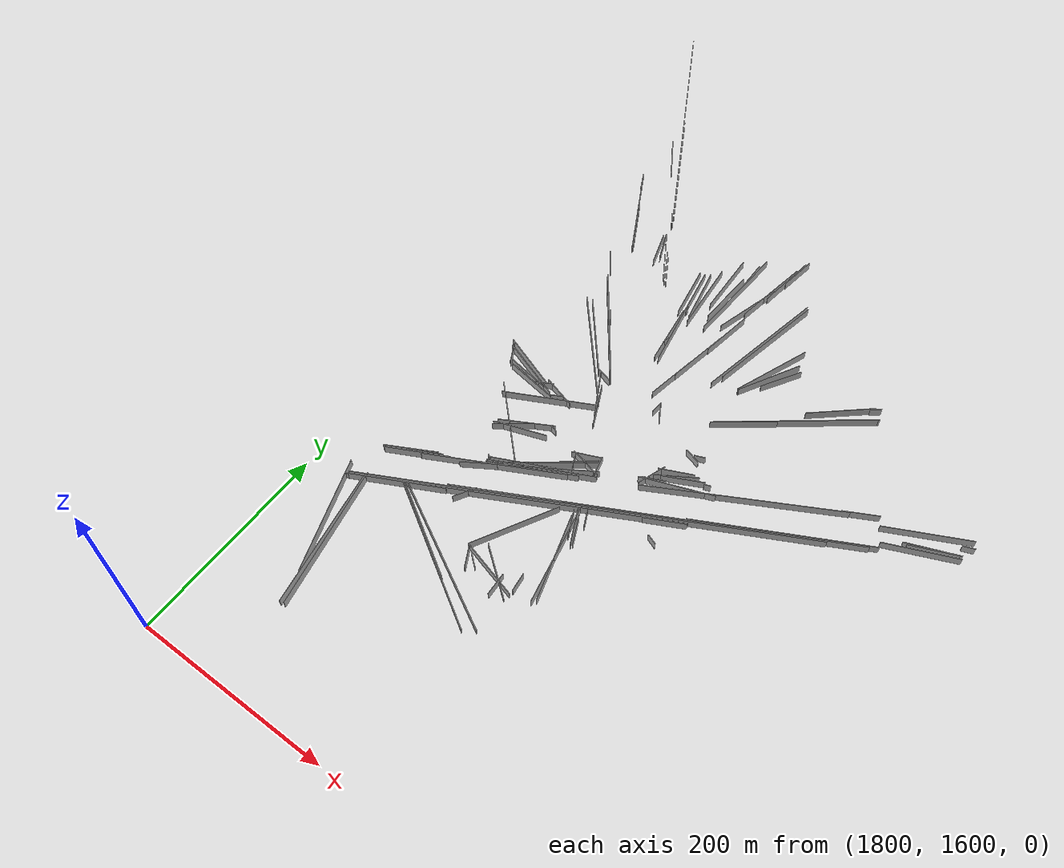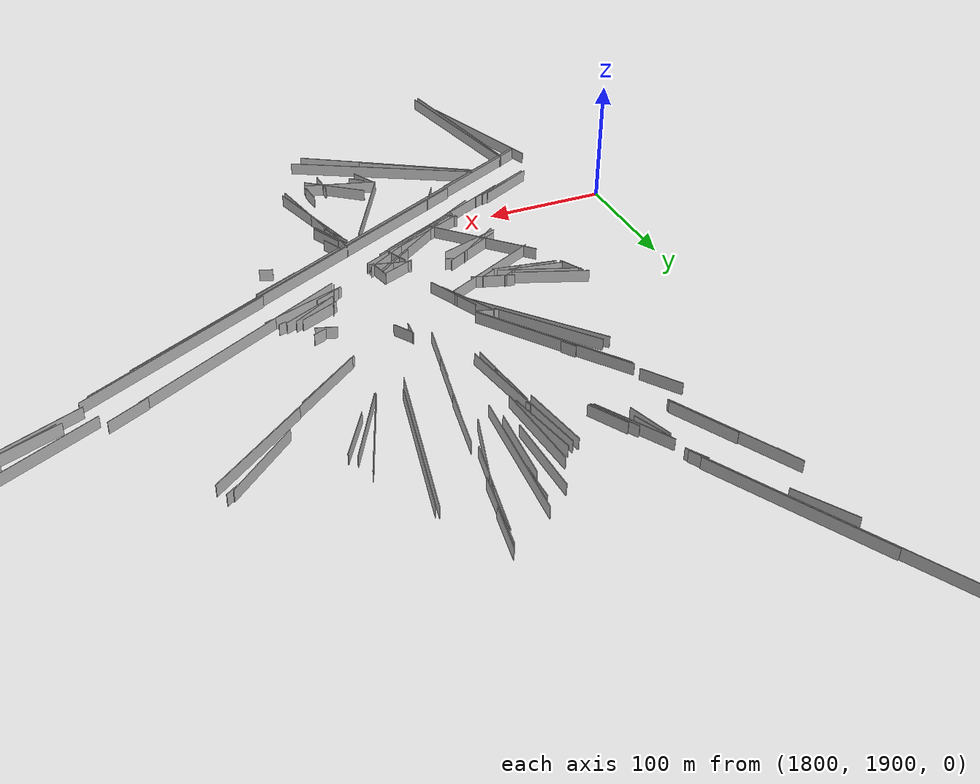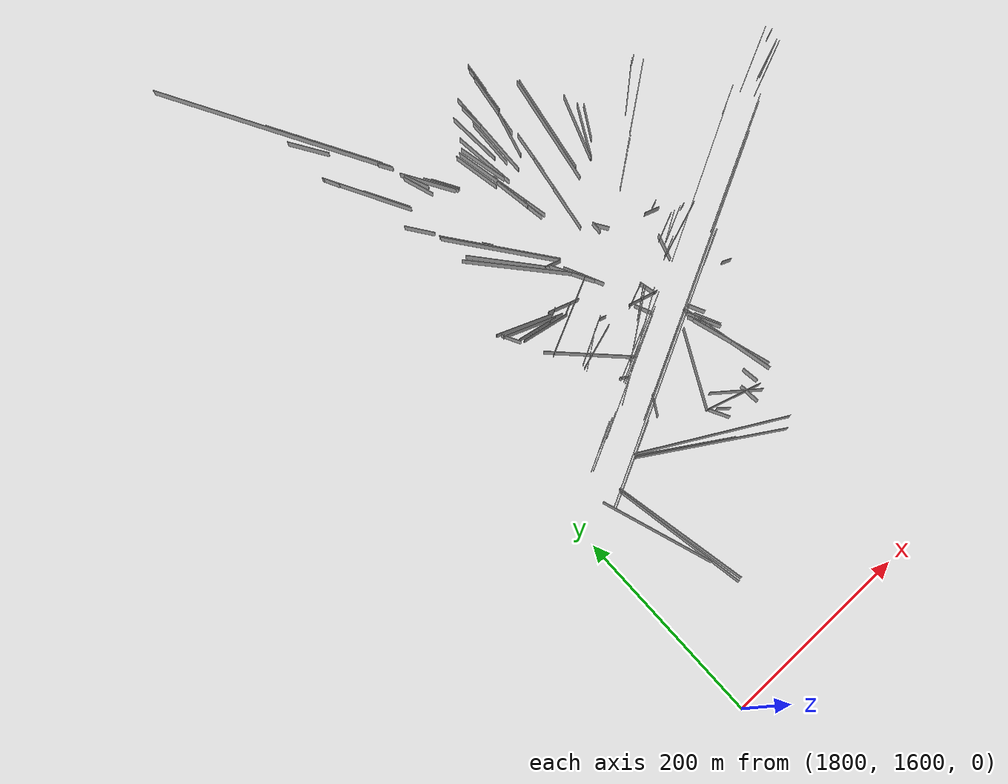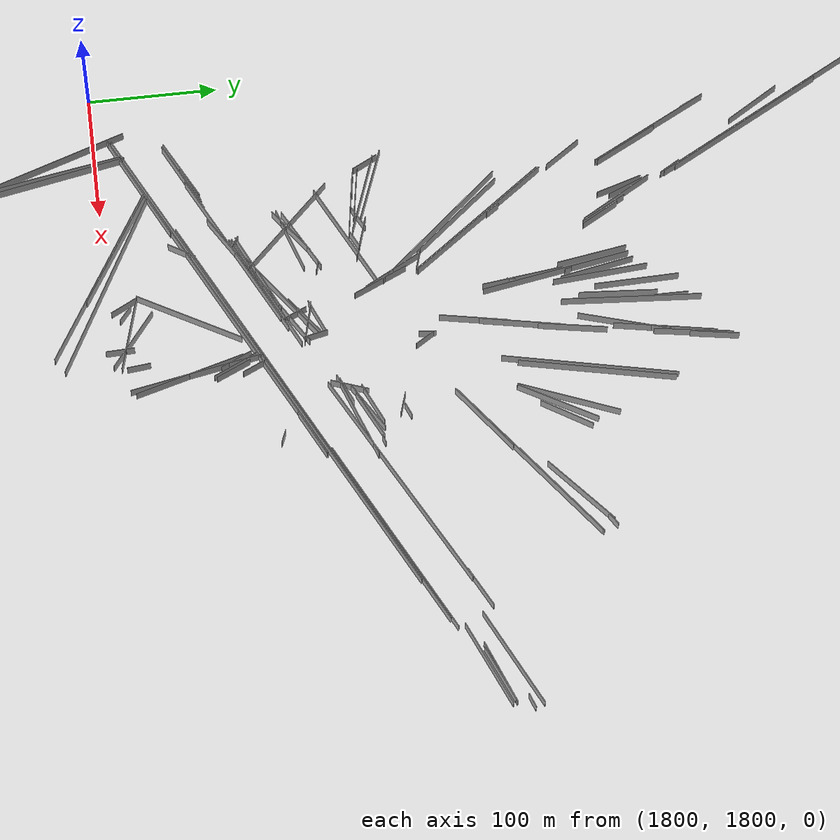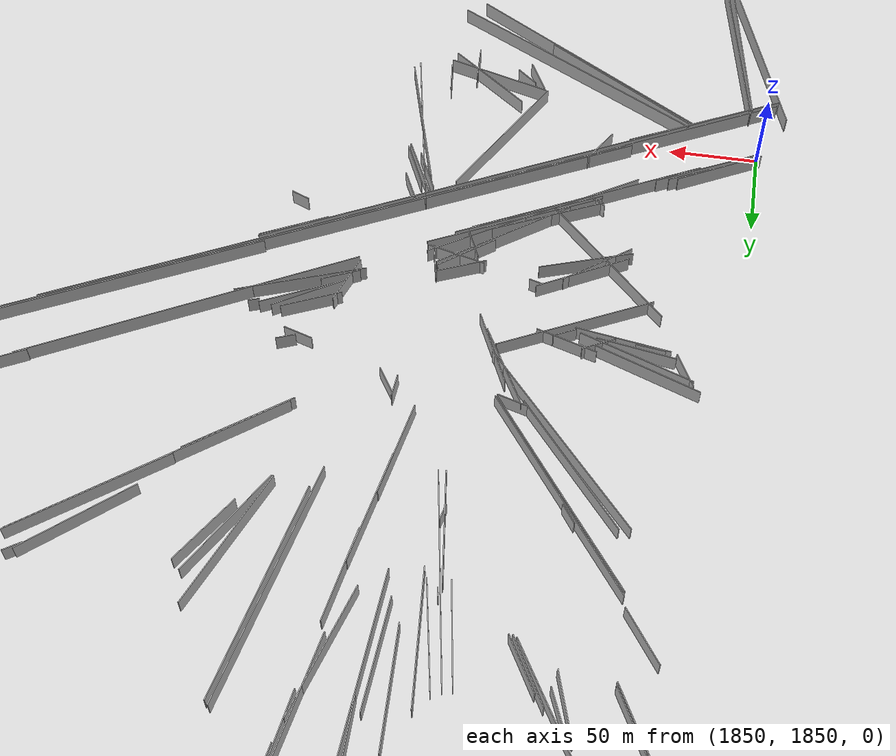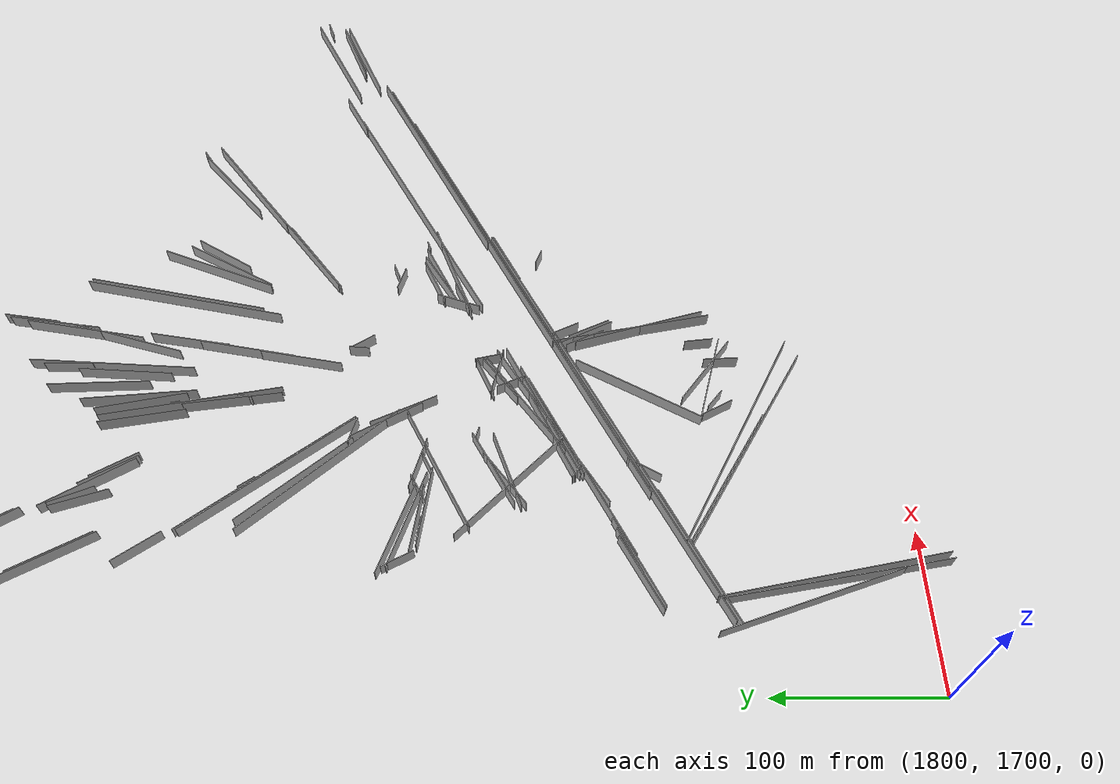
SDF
<sdf version="1.6">
 <model name="Worldsegments">
  <static>1</static>
  <link name="Wall_0">
   <pose>2092.0 1943.5 5.0 0 0 0.4706815</pose>
   <collision name="Wall_0_Collision"><geometry><box><size>381.48264 0.5 10.0</size></box></geometry></collision>
   <visual name="Wall_0_Visual"><geometry><box><size>381.48264 0.5 10.0</size></box></geometry></visual>
  </link>
  <link name="Wall_1">
   <pose>2142.0 2104.0 5.0 0 0 0.6486425</pose>
   <collision name="Wall_1_Collision"><geometry><box><size>155.60205 0.5 10.0</size></box></geometry></collision>
   <visual name="Wall_1_Visual"><geometry><box><size>155.60205 0.5 10.0</size></box></geometry></visual>
  </link>
  <link name="Wall_2">
   <pose>1846.0 2358.5 5.0 0 0 -1.0668479</pose>
   <collision name="Wall_2_Collision"><geometry><box><size>277.49774 0.5 10.0</size></box></geometry></collision>
   <visual name="Wall_2_Visual"><geometry><box><size>277.49774 0.5 10.0</size></box></geometry></visual>
  </link>
  <link name="Wall_8">
   <pose>1878.0 1867.0 5.0 0 0 0.4636476</pose>
   <collision name="Wall_8_Collision"><geometry><box><size>62.609905 0.5 10.0</size></box></geometry></collision>
   <visual name="Wall_8_Visual"><geometry><box><size>62.609905 0.5 10.0</size></box></geometry></visual>
  </link>
  <link name="Wall_9">
   <pose>1937.5 1901.0 5.0 0 0 -0.5880026</pose>
   <collision name="Wall_9_Collision"><geometry><box><size>10.816654 0.5 10.0</size></box></geometry></collision>
   <visual name="Wall_9_Visual"><geometry><box><size>10.816654 0.5 10.0</size></box></geometry></visual>
  </link>
  <link name="Wall_12">
   <pose>2146.5 2005.0 5.0 0 0 0.4893429</pose>
   <collision name="Wall_12_Collision">
    <geometry><box><size>191.47063 0.5 10.0</size></box></geometry>
   </collision>
   <visual name="Wall_12_Visual"><geometry><box><size>191.47063 0.5 10.0</size></box></geometry></visual>
  </link>
  <link name="Wall_13">
   <pose>2021.0 2076.5 5.0 0 0 1.3843094</pose>
   <collision name="Wall_13_Collision">
    <geometry><box><size>53.935146 0.5 10.0</size></box></geometry>
   </collision>
   <visual name="Wall_13_Visual"><geometry><box><size>53.935146 0.5 10.0</size></box></geometry></visual>
  </link>
  <link name="Wall_17">
   <pose>1955.0 1795.5 5.0 0 0 -0.5393047</pose>
   <collision name="Wall_17_Collision">
    <geometry><box><size>153.83432 0.5 10.0</size></box></geometry>
   </collision>
   <visual name="Wall_17_Visual"><geometry><box><size>153.83432 0.5 10.0</size></box></geometry></visual>
  </link>
  <link name="Wall_19">
   <pose>1937.0 2088.5 5.0 0 0 -0.92571294</pose>
   <collision name="Wall_19_Collision">
    <geometry><box><size>126.40016 0.5 10.0</size></box></geometry>
   </collision>
   <visual name="Wall_19_Visual"><geometry><box><size>126.40016 0.5 10.0</size></box></geometry></visual>
  </link>
  <link name="Wall_21">
   <pose>1961.5 1800.5 5.0 0 0 -0.48885235</pose>
   <collision name="Wall_21_Collision">
    <geometry><box><size>159.70598 0.5 10.0</size></box></geometry>
   </collision>
   <visual name="Wall_21_Visual"><geometry><box><size>159.70598 0.5 10.0</size></box></geometry></visual>
  </link>
  <link name="Wall_23">
   <pose>2192.5 1996.0 5.0 0 0 0.47145995</pose>
   <collision name="Wall_23_Collision">
    <geometry><box><size>171.73526 0.5 10.0</size></box></geometry>
   </collision>
   <visual name="Wall_23_Visual"><geometry><box><size>171.73526 0.5 10.0</size></box></geometry></visual>
  </link>
  <link name="Wall_24">
   <pose>2297.0 2072.5 5.0 0 0 0.453066</pose>
   <collision name="Wall_24_Collision"><geometry><box><size>84.5281 0.5 10.0</size></box></geometry></collision>
   <visual name="Wall_24_Visual"><geometry><box><size>84.5281 0.5 10.0</size></box></geometry></visual>
  </link>
  <link name="Wall_25">
   <pose>1867.0 1751.5 5.0 0 0 -1.3973736</pose>
   <collision name="Wall_25_Collision"><geometry><box><size>139.0863 0.5 10.0</size></box></geometry></collision>
   <visual name="Wall_25_Visual"><geometry><box><size>139.0863 0.5 10.0</size></box></geometry></visual>
  </link>
  <link name="Wall_27">
   <pose>2035.0 1913.0 5.0 0 0 0.47186098</pose>
   <collision name="Wall_27_Collision">
    <geometry><box><size>435.60074 0.5 10.0</size></box></geometry>
   </collision>
   <visual name="Wall_27_Visual"><geometry><box><size>435.60074 0.5 10.0</size></box></geometry></visual>
  </link>
  <link name="Wall_32">
   <pose>2043.0 1862.5 5.0 0 0 -1.3790082</pose>
   <collision name="Wall_32_Collision">
    <geometry><box><size>104.92378 0.5 10.0</size></box></geometry>
   </collision>
   <visual name="Wall_32_Visual"><geometry><box><size>104.92378 0.5 10.0</size></box></geometry></visual>
  </link>
  <link name="Wall_33">
   <pose>2028.0 2111.5 5.0 0 0 1.3825748</pose>
   <collision name="Wall_33_Collision">
    <geometry><box><size>64.132675 0.5 10.0</size></box></geometry>
   </collision>
   <visual name="Wall_33_Visual"><geometry><box><size>64.132675 0.5 10.0</size></box></geometry></visual>
  </link>
  <link name="Wall_34">
   <pose>1943.0 1899.0 5.0 0 0 0.47018346</pose>
   <collision name="Wall_34_Collision">
    <geometry><box><size>136.85028 0.5 10.0</size></box></geometry>
   </collision>
   <visual name="Wall_34_Visual"><geometry><box><size>136.85028 0.5 10.0</size></box></geometry></visual>
  </link>
  <link name="Wall_36">
   <pose>2035.5 1893.0 5.0 0 0 -1.141034</pose>
   <collision name="Wall_36_Collision">
    <geometry><box><size>26.400757 0.5 10.0</size></box></geometry>
   </collision>
   <visual name="Wall_36_Visual"><geometry><box><size>26.400757 0.5 10.0</size></box></geometry></visual>
  </link>
  <link name="Wall_37">
   <pose>1939.5 2186.0 5.0 0 0 -1.0612041</pose>
   <collision name="Wall_37_Collision">
    <geometry><box><size>38.948685 0.5 10.0</size></box></geometry>
   </collision>
   <visual name="Wall_37_Visual"><geometry><box><size>38.948685 0.5 10.0</size></box></geometry></visual>
  </link>
  <link name="Wall_38">
   <pose>2035.5 2150.0 5.0 0 0 1.3994172</pose>
   <collision name="Wall_38_Collision">
    <geometry><box><size>52.773098 0.5 10.0</size></box></geometry>
   </collision>
   <visual name="Wall_38_Visual"><geometry><box><size>52.773098 0.5 10.0</size></box></geometry></visual>
  </link>
  <link name="Wall_39">
   <pose>2016.5 2197.5 5.0 0 0 1.5054688</pose>
   <collision name="Wall_39_Collision">
    <geometry><box><size>107.22873 0.5 10.0</size></box></geometry>
   </collision>
   <visual name="Wall_39_Visual"><geometry><box><size>107.22873 0.5 10.0</size></box></geometry></visual>
  </link>
  <link name="Wall_40">
   <pose>1931.0 2197.0 5.0 0 0 -1.0358412</pose>
   <collision name="Wall_40_Collision"><geometry><box><size>62.76942 0.5 10.0</size></box></geometry></collision>
   <visual name="Wall_40_Visual"><geometry><box><size>62.76942 0.5 10.0</size></box></geometry></visual>
  </link>
  <link name="Wall_41">
   <pose>2049.5 2241.0 5.0 0 0 1.4219064</pose>
   <collision name="Wall_41_Collision">
    <geometry><box><size>60.671246 0.5 10.0</size></box></geometry>
   </collision>
   <visual name="Wall_41_Visual"><geometry><box><size>60.671246 0.5 10.0</size></box></geometry></visual>
  </link>
  <link name="Wall_42">
   <pose>1981.5 2008.5 5.0 0 0 -1.136843</pose>
   <collision name="Wall_42_Collision">
    <geometry><box><size>45.188496 0.5 10.0</size></box></geometry>
   </collision>
   <visual name="Wall_42_Visual"><geometry><box><size>45.188496 0.5 10.0</size></box></geometry></visual>
  </link>
  <link name="Wall_47">
   <pose>2018.5 1806.0 5.0 0 0 -1.5253731</pose>
   <collision name="Wall_47_Collision">
    <geometry><box><size>22.022715 0.5 10.0</size></box></geometry>
   </collision>
   <visual name="Wall_47_Visual"><geometry><box><size>22.022715 0.5 10.0</size></box></geometry></visual>
  </link>
  <link name="Wall_53">
   <pose>2091.0 1979.5 5.0 0 0 0.35230872</pose>
   <collision name="Wall_53_Collision"><geometry><box><size>72.44998 0.5 10.0</size></box></geometry></collision>
   <visual name="Wall_53_Visual"><geometry><box><size>72.44998 0.5 10.0</size></box></geometry></visual>
  </link>
  <link name="Wall_54">
   <pose>2002.0 1941.0 5.0 0 0 -1.152572</pose>
   <collision name="Wall_54_Collision">
    <geometry><box><size>19.697716 0.5 10.0</size></box></geometry>
   </collision>
   <visual name="Wall_54_Visual"><geometry><box><size>19.697716 0.5 10.0</size></box></geometry></visual>
  </link>
  <link name="Wall_58">
   <pose>2102.0 1944.0 5.0 0 0 0.4636476</pose>
   <collision name="Wall_58_Collision"><geometry><box><size>40.24922 0.5 10.0</size></box></geometry></collision>
   <visual name="Wall_58_Visual"><geometry><box><size>40.24922 0.5 10.0</size></box></geometry></visual>
  </link>
  <link name="Wall_59">
   <pose>1874.0 2230.0 5.0 0 0 -1.080839</pose>
   <collision name="Wall_59_Collision"><geometry><box><size>102.0 0.5 10.0</size></box></geometry></collision>
   <visual name="Wall_59_Visual"><geometry><box><size>102.0 0.5 10.0</size></box></geometry></visual>
  </link>
  <link name="Wall_61">
   <pose>2300.0 2054.0 5.0 0 0 0.4012288</pose>
   <collision name="Wall_61_Collision">
    <geometry><box><size>71.693794 0.5 10.0</size></box></geometry>
   </collision>
   <visual name="Wall_61_Visual"><geometry><box><size>71.693794 0.5 10.0</size></box></geometry></visual>
  </link>
  <link name="Wall_62">
   <pose>1980.0 1882.5 5.0 0 0 0.47218224</pose>
   <collision name="Wall_62_Collision">
    <geometry><box><size>314.40262 0.5 10.0</size></box></geometry>
   </collision>
   <visual name="Wall_62_Visual"><geometry><box><size>314.40262 0.5 10.0</size></box></geometry></visual>
  </link>
  <link name="Wall_64">
   <pose>1906.0 2003.0 5.0 0 0 -0.34097895</pose>
   <collision name="Wall_64_Collision"><geometry><box><size>65.78754 0.5 10.0</size></box></geometry></collision>
   <visual name="Wall_64_Visual"><geometry><box><size>65.78754 0.5 10.0</size></box></geometry></visual>
  </link>
  <link name="Wall_65">
   <pose>1996.5 1860.5 5.0 0 0 1.0614952</pose>
   <collision name="Wall_65_Collision"><geometry><box><size>88.19297 0.5 10.0</size></box></geometry></collision>
   <visual name="Wall_65_Visual"><geometry><box><size>88.19297 0.5 10.0</size></box></geometry></visual>
  </link>
  <link name="Wall_66">
   <pose>1990.0 2117.0 5.0 0 0 -1.442473</pose>
   <collision name="Wall_66_Collision"><geometry><box><size>62.514 0.5 10.0</size></box></geometry></collision>
   <visual name="Wall_66_Visual"><geometry><box><size>62.514 0.5 10.0</size></box></geometry></visual>
  </link>
  <link name="Wall_67">
   <pose>1871.0 1866.0 5.0 0 0 0.4808873</pose>
   <collision name="Wall_67_Collision">
    <geometry><box><size>51.884487 0.5 10.0</size></box></geometry>
   </collision>
   <visual name="Wall_67_Visual"><geometry><box><size>51.884487 0.5 10.0</size></box></geometry></visual>
  </link>
  <link name="Wall_71">
   <pose>1993.0 2176.5 5.0 0 0 -1.4887888</pose>
   <collision name="Wall_71_Collision"><geometry><box><size>73.24616 0.5 10.0</size></box></geometry></collision>
   <visual name="Wall_71_Visual"><geometry><box><size>73.24616 0.5 10.0</size></box></geometry></visual>
  </link>
  <link name="Wall_72">
   <pose>1869.5 1753.5 5.0 0 0 -1.3789408</pose>
   <collision name="Wall_72_Collision">
    <geometry><box><size>141.59802 0.5 10.0</size></box></geometry>
   </collision>
   <visual name="Wall_72_Visual"><geometry><box><size>141.59802 0.5 10.0</size></box></geometry></visual>
  </link>
  <link name="Wall_73">
   <pose>1940.0 2058.0 5.0 0 0 -0.8534746</pose>
   <collision name="Wall_73_Collision">
    <geometry><box><size>124.73973 0.5 10.0</size></box></geometry>
   </collision>
   <visual name="Wall_73_Visual"><geometry><box><size>124.73973 0.5 10.0</size></box></geometry></visual>
  </link>
  <link name="Wall_74">
   <pose>2033.0 1819.0 5.0 0 0 -1.4601392</pose>
   <collision name="Wall_74_Collision">
    <geometry><box><size>18.110771 0.5 10.0</size></box></geometry>
   </collision>
   <visual name="Wall_74_Visual"><geometry><box><size>18.110771 0.5 10.0</size></box></geometry></visual>
  </link>
  <link name="Wall_76">
   <pose>1933.0 2072.5 5.0 0 0 -0.87459177</pose>
   <collision name="Wall_76_Collision"><geometry><box><size>87.32124 0.5 10.0</size></box></geometry></collision>
   <visual name="Wall_76_Visual"><geometry><box><size>87.32124 0.5 10.0</size></box></geometry></visual>
  </link>
  <link name="Wall_78">
   <pose>2069.0 2159.0 5.0 0 0 1.3617734</pose>
   <collision name="Wall_78_Collision">
    <geometry><box><size>134.93703 0.5 10.0</size></box></geometry>
   </collision>
   <visual name="Wall_78_Visual"><geometry><box><size>134.93703 0.5 10.0</size></box></geometry></visual>
  </link>
  <link name="Wall_81">
   <pose>1981.0 1921.5 5.0 0 0 0.4549142</pose>
   <collision name="Wall_81_Collision">
    <geometry><box><size>102.41582 0.5 10.0</size></box></geometry>
   </collision>
   <visual name="Wall_81_Visual"><geometry><box><size>102.41582 0.5 10.0</size></box></geometry></visual>
  </link>
  <link name="Wall_83">
   <pose>1930.5 2101.0 5.0 0 0 -0.9600704</pose>
   <collision name="Wall_83_Collision">
    <geometry><box><size>12.206555 0.5 10.0</size></box></geometry>
   </collision>
   <visual name="Wall_83_Visual"><geometry><box><size>12.206555 0.5 10.0</size></box></geometry></visual>
  </link>
  <link name="Wall_84">
   <pose>2005.0 1814.0 5.0 0 0 -0.26916748</pose>
   <collision name="Wall_84_Collision">
    <geometry><box><size>60.166435 0.5 10.0</size></box></geometry>
   </collision>
   <visual name="Wall_84_Visual"><geometry><box><size>60.166435 0.5 10.0</size></box></geometry></visual>
  </link>
  <link name="Wall_87">
   <pose>2021.0 1955.0 5.0 0 0 -1.3521274</pose>
   <collision name="Wall_87_Collision">
    <geometry><box><size>18.439089 0.5 10.0</size></box></geometry>
   </collision>
   <visual name="Wall_87_Visual"><geometry><box><size>18.439089 0.5 10.0</size></box></geometry></visual>
  </link>
  <link name="Wall_91">
   <pose>2070.0 1973.5 5.0 0 0 0.42285392</pose>
   <collision name="Wall_91_Collision">
    <geometry><box><size>21.931713 0.5 10.0</size></box></geometry>
   </collision>
   <visual name="Wall_91_Visual"><geometry><box><size>21.931713 0.5 10.0</size></box></geometry></visual>
  </link>
  <link name="Wall_94">
   <pose>2044.0 1857.0 5.0 0 0 -1.2924967</pose>
   <collision name="Wall_94_Collision"><geometry><box><size>87.36132 0.5 10.0</size></box></geometry></collision>
   <visual name="Wall_94_Visual"><geometry><box><size>87.36132 0.5 10.0</size></box></geometry></visual>
  </link>
  <link name="Wall_96">
   <pose>2053.0 2256.5 5.0 0 0 1.4100336</pose>
   <collision name="Wall_96_Collision"><geometry><box><size>37.48333 0.5 10.0</size></box></geometry></collision>
   <visual name="Wall_96_Visual"><geometry><box><size>37.48333 0.5 10.0</size></box></geometry></visual>
  </link>
  <link name="Wall_97">
   <pose>2239.5 2055.0 5.0 0 0 0.47646743</pose>
   <collision name="Wall_97_Collision"><geometry><box><size>34.88553 0.5 10.0</size></box></geometry></collision>
   <visual name="Wall_97_Visual"><geometry><box><size>34.88553 0.5 10.0</size></box></geometry></visual>
  </link>
  <link name="Wall_98">
   <pose>2094.0 2139.5 5.0 0 0 1.19029</pose>
   <collision name="Wall_98_Collision"><geometry><box><size>80.77747 0.5 10.0</size></box></geometry></collision>
   <visual name="Wall_98_Visual"><geometry><box><size>80.77747 0.5 10.0</size></box></geometry></visual>
  </link>
  <link name="Wall_100">
   <pose>2332.5 2082.0 5.0 0 0 0.348771</pose>
   <collision name="Wall_100_Collision">
    <geometry><box><size>11.7046995 0.5 10.0</size></box></geometry>
   </collision>
   <visual name="Wall_100_Visual"><geometry><box><size>11.7046995 0.5 10.0</size></box></geometry></visual>
  </link>
  <link name="Wall_101">
   <pose>1884.5 1872.0 5.0 0 0 0.4497596</pose>
   <collision name="Wall_101_Collision">
    <geometry><box><size>32.202484 0.5 10.0</size></box></geometry>
   </collision>
   <visual name="Wall_101_Visual"><geometry><box><size>32.202484 0.5 10.0</size></box></geometry></visual>
  </link>
  <link name="Wall_102">
   <pose>1965.0 1916.5 5.0 0 0 0.43750978</pose>
   <collision name="Wall_102_Collision">
    <geometry><box><size>68.44706 0.5 10.0</size></box></geometry>
   </collision>
   <visual name="Wall_102_Visual"><geometry><box><size>68.44706 0.5 10.0</size></box></geometry></visual>
  </link>
  <link name="Wall_103">
   <pose>2002.0 2203.5 5.0 0 0 -1.5400368</pose>
   <collision name="Wall_103_Collision">
    <geometry><box><size>65.03076 0.5 10.0</size></box></geometry>
   </collision>
   <visual name="Wall_103_Visual"><geometry><box><size>65.03076 0.5 10.0</size></box></geometry></visual>
  </link>
  <link name="Wall_107">
   <pose>2044.0 2220.0 5.0 0 0 1.3932002</pose>
   <collision name="Wall_107_Collision">
    <geometry><box><size>79.24645 0.5 10.0</size></box></geometry>
   </collision>
   <visual name="Wall_107_Visual"><geometry><box><size>79.24645 0.5 10.0</size></box></geometry></visual>
  </link>
  <link name="Wall_110">
   <pose>2170.5 2139.0 5.0 0 0 0.7118469</pose>
   <collision name="Wall_110_Collision">
    <geometry><box><size>67.357254 0.5 10.0</size></box></geometry>
   </collision>
   <visual name="Wall_110_Visual"><geometry><box><size>67.357254 0.5 10.0</size></box></geometry></visual>
  </link>
  <link name="Wall_112">
   <pose>1888.5 2160.5 5.0 0 0 -0.957589</pose>
   <collision name="Wall_112_Collision">
    <geometry><box><size>33.01515 0.5 10.0</size></box></geometry>
   </collision>
   <visual name="Wall_112_Visual"><geometry><box><size>33.01515 0.5 10.0</size></box></geometry></visual>
  </link>
  <link name="Wall_116">
   <pose>2033.5 2037.0 5.0 0 0 -0.99945885</pose>
   <collision name="Wall_116_Collision">
    <geometry><box><size>16.643316 0.5 10.0</size></box></geometry>
   </collision>
   <visual name="Wall_116_Visual"><geometry><box><size>16.643316 0.5 10.0</size></box></geometry></visual>
  </link>
  <link name="Wall_118">
   <pose>1992.0 2109.5 5.0 0 0 1.3521274</pose>
   <collision name="Wall_118_Collision">
    <geometry><box><size>9.219544 0.5 10.0</size></box></geometry>
   </collision>
   <visual name="Wall_118_Visual"><geometry><box><size>9.219544 0.5 10.0</size></box></geometry></visual>
  </link>
  <link name="Wall_124">
   <pose>1988.5 2174.5 5.0 0 0 -1.3801575</pose>
   <collision name="Wall_124_Collision"><geometry><box><size>58.0517 0.5 10.0</size></box></geometry></collision>
   <visual name="Wall_124_Visual"><geometry><box><size>58.0517 0.5 10.0</size></box></geometry></visual>
  </link>
  <link name="Wall_125">
   <pose>1899.5 2009.5 5.0 0 0 -0.3529904</pose>
   <collision name="Wall_125_Collision">
    <geometry><box><size>60.74537 0.5 10.0</size></box></geometry>
   </collision>
   <visual name="Wall_125_Visual"><geometry><box><size>60.74537 0.5 10.0</size></box></geometry></visual>
  </link>
  <link name="Wall_128">
   <pose>1940.0 1986.0 5.0 0 0 0.4636476</pose>
   <collision name="Wall_128_Collision">
    <geometry><box><size>89.44272 0.5 10.0</size></box></geometry>
   </collision>
   <visual name="Wall_128_Visual"><geometry><box><size>89.44272 0.5 10.0</size></box></geometry></visual>
  </link>
  <link name="Wall_129">
   <pose>2043.0 1905.5 5.0 0 0 -1.1309538</pose>
   <collision name="Wall_129_Collision">
    <geometry><box><size>18.788294 0.5 10.0</size></box></geometry>
   </collision>
   <visual name="Wall_129_Visual"><geometry><box><size>18.788294 0.5 10.0</size></box></geometry></visual>
  </link>
  <link name="Wall_133">
   <pose>2040.0 1891.5 5.0 0 0 -1.1193433</pose>
   <collision name="Wall_133_Collision">
    <geometry><box><size>36.67424 0.5 10.0</size></box></geometry>
   </collision>
   <visual name="Wall_133_Visual"><geometry><box><size>36.67424 0.5 10.0</size></box></geometry></visual>
  </link>
  <link name="Wall_136">
   <pose>1932.5 1945.0 5.0 0 0 0.638914</pose>
   <collision name="Wall_136_Collision">
    <geometry><box><size>43.60046 0.5 10.0</size></box></geometry>
   </collision>
   <visual name="Wall_136_Visual"><geometry><box><size>43.60046 0.5 10.0</size></box></geometry></visual>
  </link>
  <link name="Wall_137">
   <pose>1971.0 1881.0 5.0 0 0 0.47249693</pose>
   <collision name="Wall_137_Collision">
    <geometry><box><size>101.07423 0.5 10.0</size></box></geometry>
   </collision>
   <visual name="Wall_137_Visual"><geometry><box><size>101.07423 0.5 10.0</size></box></geometry></visual>
  </link>
  <link name="Wall_138">
   <pose>1988.0 2143.0 5.0 0 0 -1.3971251</pose>
   <collision name="Wall_138_Collision">
    <geometry><box><size>115.74109 0.5 10.0</size></box></geometry>
   </collision>
   <visual name="Wall_138_Visual"><geometry><box><size>115.74109 0.5 10.0</size></box></geometry></visual>
  </link>
  <link name="Wall_141">
   <pose>2113.0 1997.0 5.0 0 0 0.32175055</pose>
   <collision name="Wall_141_Collision">
    <geometry><box><size>6.3245554 0.5 10.0</size></box></geometry>
   </collision>
   <visual name="Wall_141_Visual"><geometry><box><size>6.3245554 0.5 10.0</size></box></geometry></visual>
  </link>
  <link name="Wall_142">
   <pose>1977.5 2172.0 5.0 0 0 -1.4056476</pose>
   <collision name="Wall_142_Collision">
    <geometry><box><size>54.74486 0.5 10.0</size></box></geometry>
   </collision>
   <visual name="Wall_142_Visual"><geometry><box><size>54.74486 0.5 10.0</size></box></geometry></visual>
  </link>
  <link name="Wall_147">
   <pose>2072.5 2164.0 5.0 0 0 1.3620192</pose>
   <collision name="Wall_147_Collision">
    <geometry><box><size>120.61923 0.5 10.0</size></box></geometry>
   </collision>
   <visual name="Wall_147_Visual"><geometry><box><size>120.61923 0.5 10.0</size></box></geometry></visual>
  </link>
  <link name="Wall_148">
   <pose>2085.0 1988.0 5.0 0 0 0.5485494</pose>
   <collision name="Wall_148_Collision">
    <geometry><box><size>42.190044 0.5 10.0</size></box></geometry>
   </collision>
   <visual name="Wall_148_Visual"><geometry><box><size>42.190044 0.5 10.0</size></box></geometry></visual>
  </link>
  <link name="Wall_150">
   <pose>1854.0 1768.5 5.0 0 0 -1.2409596</pose>
   <collision name="Wall_150_Collision">
    <geometry><box><size>117.32433 0.5 10.0</size></box></geometry>
   </collision>
   <visual name="Wall_150_Visual"><geometry><box><size>117.32433 0.5 10.0</size></box></geometry></visual>
  </link>
  <link name="Wall_151">
   <pose>2036.5 2190.5 5.0 0 0 1.2832205</pose>
   <collision name="Wall_151_Collision">
    <geometry><box><size>74.04053 0.5 10.0</size></box></geometry>
   </collision>
   <visual name="Wall_151_Visual"><geometry><box><size>74.04053 0.5 10.0</size></box></geometry></visual>
  </link>
  <link name="Wall_156">
   <pose>2011.0 2188.0 5.0 0 0 1.5042281</pose>
   <collision name="Wall_156_Collision">
    <geometry><box><size>60.133186 0.5 10.0</size></box></geometry>
   </collision>
   <visual name="Wall_156_Visual"><geometry><box><size>60.133186 0.5 10.0</size></box></geometry></visual>
  </link>
  <link name="Wall_157">
   <pose>2004.5 1948.0 5.0 0 0 0.6489956</pose>
   <collision name="Wall_157_Collision">
    <geometry><box><size>36.40055 0.5 10.0</size></box></geometry>
   </collision>
   <visual name="Wall_157_Visual"><geometry><box><size>36.40055 0.5 10.0</size></box></geometry></visual>
  </link>
  <link name="Wall_158">
   <pose>1943.0 2183.0 5.0 0 0 -1.0516502</pose>
   <collision name="Wall_158_Collision">
    <geometry><box><size>32.24903 0.5 10.0</size></box></geometry>
   </collision>
   <visual name="Wall_158_Visual"><geometry><box><size>32.24903 0.5 10.0</size></box></geometry></visual>
  </link>
  <link name="Wall_161">
   <pose>1914.0 1993.0 5.0 0 0 -0.15264933</pose>
   <collision name="Wall_161_Collision">
    <geometry><box><size>52.611786 0.5 10.0</size></box></geometry>
   </collision>
   <visual name="Wall_161_Visual"><geometry><box><size>52.611786 0.5 10.0</size></box></geometry></visual>
  </link>
  <link name="Wall_163">
   <pose>2103.5 2074.0 5.0 0 0 0.6403565</pose>
   <collision name="Wall_163_Collision">
    <geometry><box><size>63.600315 0.5 10.0</size></box></geometry>
   </collision>
   <visual name="Wall_163_Visual"><geometry><box><size>63.600315 0.5 10.0</size></box></geometry></visual>
  </link>
  <link name="Wall_164">
   <pose>2307.5 2061.5 5.0 0 0 0.36990607</pose>
   <collision name="Wall_164_Collision">
    <geometry><box><size>52.554733 0.5 10.0</size></box></geometry>
   </collision>
   <visual name="Wall_164_Visual"><geometry><box><size>52.554733 0.5 10.0</size></box></geometry></visual>
  </link>
  <link name="Wall_165">
   <pose>1974.0 1916.0 5.0 0 0 0.45333868</pose>
   <collision name="Wall_165_Collision">
    <geometry><box><size>86.764046 0.5 10.0</size></box></geometry>
   </collision>
   <visual name="Wall_165_Visual"><geometry><box><size>86.764046 0.5 10.0</size></box></geometry></visual>
  </link>
  <link name="Wall_166">
   <pose>1855.0 2265.0 5.0 0 0 -1.1071488</pose>
   <collision name="Wall_166_Collision">
    <geometry><box><size>17.888544 0.5 10.0</size></box></geometry>
   </collision>
   <visual name="Wall_166_Visual"><geometry><box><size>17.888544 0.5 10.0</size></box></geometry></visual>
  </link>
  <link name="Wall_167">
   <pose>2106.5 2136.5 5.0 0 0 1.0146301</pose>
   <collision name="Wall_167_Collision">
    <geometry><box><size>43.56604 0.5 10.0</size></box></geometry>
   </collision>
   <visual name="Wall_167_Visual"><geometry><box><size>43.56604 0.5 10.0</size></box></geometry></visual>
  </link>
  <link name="Wall_170">
   <pose>1940.0 1860.0 5.0 0 0 1.0303768</pose>
   <collision name="Wall_170_Collision">
    <geometry><box><size>23.323807 0.5 10.0</size></box></geometry>
   </collision>
   <visual name="Wall_170_Visual"><geometry><box><size>23.323807 0.5 10.0</size></box></geometry></visual>
  </link>
  <link name="Wall_173">
   <pose>2091.5 1989.0 5.0 0 0 0.45277846</pose>
   <collision name="Wall_173_Collision">
    <geometry><box><size>41.14608 0.5 10.0</size></box></geometry>
   </collision>
   <visual name="Wall_173_Visual"><geometry><box><size>41.14608 0.5 10.0</size></box></geometry></visual>
  </link>
  <link name="Wall_174">
   <pose>1945.0 1993.0 5.0 0 0 0.4636476</pose>
   <collision name="Wall_174_Collision">
    <geometry><box><size>13.416408 0.5 10.0</size></box></geometry>
   </collision>
   <visual name="Wall_174_Visual"><geometry><box><size>13.416408 0.5 10.0</size></box></geometry></visual>
  </link>
  <link name="Wall_175">
   <pose>1986.0 1932.5 5.0 0 0 0.62441033</pose>
   <collision name="Wall_175_Collision">
    <geometry><box><size>83.81527 0.5 10.0</size></box></geometry>
   </collision>
   <visual name="Wall_175_Visual"><geometry><box><size>83.81527 0.5 10.0</size></box></geometry></visual>
  </link>
  <link name="Wall_176">
   <pose>2168.5 2124.5 5.0 0 0 0.6456893</pose>
   <collision name="Wall_176_Collision">
    <geometry><box><size>91.400215 0.5 10.0</size></box></geometry>
   </collision>
   <visual name="Wall_176_Visual"><geometry><box><size>91.400215 0.5 10.0</size></box></geometry></visual>
  </link>
  <link name="Wall_177">
   <pose>1974.0 2019.0 5.0 0 0 -1.0714496</pose>
   <collision name="Wall_177_Collision">
    <geometry><box><size>50.119858 0.5 10.0</size></box></geometry>
   </collision>
   <visual name="Wall_177_Visual"><geometry><box><size>50.119858 0.5 10.0</size></box></geometry></visual>
  </link>
  <link name="Wall_179">
   <pose>1922.5 2205.5 5.0 0 0 -1.1839206</pose>
   <collision name="Wall_179_Collision">
    <geometry><box><size>29.15476 0.5 10.0</size></box></geometry>
   </collision>
   <visual name="Wall_179_Visual"><geometry><box><size>29.15476 0.5 10.0</size></box></geometry></visual>
  </link>
  <link name="Wall_184">
   <pose>1940.0 1952.0 5.0 0 0 0.49642277</pose>
   <collision name="Wall_184_Collision">
    <geometry><box><size>54.589375 0.5 10.0</size></box></geometry>
   </collision>
   <visual name="Wall_184_Visual"><geometry><box><size>54.589375 0.5 10.0</size></box></geometry></visual>
  </link>
  <link name="Wall_186">
   <pose>1926.5 1997.5 5.0 0 0 0.48689923</pose>
   <collision name="Wall_186_Collision">
    <geometry><box><size>19.235384 0.5 10.0</size></box></geometry>
   </collision>
   <visual name="Wall_186_Visual"><geometry><box><size>19.235384 0.5 10.0</size></box></geometry></visual>
  </link>
  <link name="Wall_189">
   <pose>2082.5 1992.0 5.0 0 0 0.4241944</pose>
   <collision name="Wall_189_Collision"><geometry><box><size>34.0147 0.5 10.0</size></box></geometry></collision>
   <visual name="Wall_189_Visual"><geometry><box><size>34.0147 0.5 10.0</size></box></geometry></visual>
  </link>
  <link name="Wall_190">
   <pose>2096.5 2131.0 5.0 0 0 1.053509</pose>
   <collision name="Wall_190_Collision">
    <geometry><box><size>66.730804 0.5 10.0</size></box></geometry>
   </collision>
   <visual name="Wall_190_Visual"><geometry><box><size>66.730804 0.5 10.0</size></box></geometry></visual>
  </link>
  <link name="Wall_191">
   <pose>1988.5 1812.5 5.0 0 0 -0.6857295</pose>
   <collision name="Wall_191_Collision">
    <geometry><box><size>14.21267 0.5 10.0</size></box></geometry>
   </collision>
   <visual name="Wall_191_Visual"><geometry><box><size>14.21267 0.5 10.0</size></box></geometry></visual>
  </link>
  <link name="Wall_194">
   <pose>2043.0 1890.0 5.0 0 0 -1.1383885</pose>
   <collision name="Wall_194_Collision">
    <geometry><box><size>28.635643 0.5 10.0</size></box></geometry>
   </collision>
   <visual name="Wall_194_Visual"><geometry><box><size>28.635643 0.5 10.0</size></box></geometry></visual>
  </link>
  <link name="Wall_195">
   <pose>1982.0 1811.5 5.0 0 0 -1.0863184</pose>
   <collision name="Wall_195_Collision">
    <geometry><box><size>21.470911 0.5 10.0</size></box></geometry>
   </collision>
   <visual name="Wall_195_Visual"><geometry><box><size>21.470911 0.5 10.0</size></box></geometry></visual>
  </link>
  <link name="Wall_196">
   <pose>2308.5 2061.0 5.0 0 0 0.39644128</pose>
   <collision name="Wall_196_Collision">
    <geometry><box><size>46.615448 0.5 10.0</size></box></geometry>
   </collision>
   <visual name="Wall_196_Visual"><geometry><box><size>46.615448 0.5 10.0</size></box></geometry></visual>
  </link>
  <link name="Wall_198">
   <pose>1920.5 2200.5 5.0 0 0 -1.2662854</pose>
   <collision name="Wall_198_Collision">
    <geometry><box><size>36.687874 0.5 10.0</size></box></geometry>
   </collision>
   <visual name="Wall_198_Visual"><geometry><box><size>36.687874 0.5 10.0</size></box></geometry></visual>
  </link>
  <link name="Wall_204">
   <pose>2085.0 2014.5 5.0 0 0 -0.30288488</pose>
   <collision name="Wall_204_Collision">
    <geometry><box><size>16.763054 0.5 10.0</size></box></geometry>
   </collision>
   <visual name="Wall_204_Visual"><geometry><box><size>16.763054 0.5 10.0</size></box></geometry></visual>
  </link>
  <link name="Wall_206">
   <pose>1861.5 2313.0 5.0 0 0 -1.012197</pose>
   <collision name="Wall_206_Collision">
    <geometry><box><size>47.169907 0.5 10.0</size></box></geometry>
   </collision>
   <visual name="Wall_206_Visual"><geometry><box><size>47.169907 0.5 10.0</size></box></geometry></visual>
  </link>
  <link name="Wall_209">
   <pose>1971.0 1916.0 5.0 0 0 0.5536813</pose>
   <collision name="Wall_209_Collision">
    <geometry><box><size>129.3213 0.5 10.0</size></box></geometry>
   </collision>
   <visual name="Wall_209_Visual"><geometry><box><size>129.3213 0.5 10.0</size></box></geometry></visual>
  </link>
  <link name="Wall_210">
   <pose>1964.5 1962.0 5.0 0 0 -0.27829966</pose>
   <collision name="Wall_210_Collision"><geometry><box><size>7.28011 0.5 10.0</size></box></geometry></collision>
   <visual name="Wall_210_Visual"><geometry><box><size>7.28011 0.5 10.0</size></box></geometry></visual>
  </link>
  <link name="Wall_211">
   <pose>2196.5 2160.0 5.0 0 0 0.5880026</pose>
   <collision name="Wall_211_Collision">
    <geometry><box><size>10.816654 0.5 10.0</size></box></geometry>
   </collision>
   <visual name="Wall_211_Visual"><geometry><box><size>10.816654 0.5 10.0</size></box></geometry></visual>
  </link>
  <link name="Wall_213">
   <pose>1928.0 1942.0 5.0 0 0 -0.7853982</pose>
   <collision name="Wall_213_Collision"><geometry><box><size>93.3381 0.5 10.0</size></box></geometry></collision>
   <visual name="Wall_213_Visual"><geometry><box><size>93.3381 0.5 10.0</size></box></geometry></visual>
  </link>
  <link name="Wall_215">
   <pose>2010.0 1950.0 5.0 0 0 -0.24497867</pose>
   <collision name="Wall_215_Collision">
    <geometry><box><size>32.984844 0.5 10.0</size></box></geometry>
   </collision>
   <visual name="Wall_215_Visual"><geometry><box><size>32.984844 0.5 10.0</size></box></geometry></visual>
  </link>
  <link name="Wall_216">
   <pose>1876.5 2305.0 5.0 0 0 -1.0673027</pose>
   <collision name="Wall_216_Collision">
    <geometry><box><size>134.71823 0.5 10.0</size></box></geometry>
   </collision>
   <visual name="Wall_216_Visual"><geometry><box><size>134.71823 0.5 10.0</size></box></geometry></visual>
  </link>
  <link name="Wall_218">
   <pose>1966.5 2039.5 5.0 0 0 -0.28605145</pose>
   <collision name="Wall_218_Collision">
    <geometry><box><size>17.720045 0.5 10.0</size></box></geometry>
   </collision>
   <visual name="Wall_218_Visual"><geometry><box><size>17.720045 0.5 10.0</size></box></geometry></visual>
  </link>
  <link name="Wall_219">
   <pose>1933.0 1810.0 5.0 0 0 -0.5438325</pose>
   <collision name="Wall_219_Collision">
    <geometry><box><size>100.49876 0.5 10.0</size></box></geometry>
   </collision>
   <visual name="Wall_219_Visual"><geometry><box><size>100.49876 0.5 10.0</size></box></geometry></visual>
  </link>
  <link name="Wall_222">
   <pose>1943.5 1998.0 5.0 0 0 -0.29423457</pose>
   <collision name="Wall_222_Collision">
    <geometry><box><size>34.48188 0.5 10.0</size></box></geometry>
   </collision>
   <visual name="Wall_222_Visual"><geometry><box><size>34.48188 0.5 10.0</size></box></geometry></visual>
  </link>
  <link name="Wall_223">
   <pose>1937.5 2089.5 5.0 0 0 -0.9288504</pose>
   <collision name="Wall_223_Collision">
    <geometry><box><size>128.60016 0.5 10.0</size></box></geometry>
   </collision>
   <visual name="Wall_223_Visual"><geometry><box><size>128.60016 0.5 10.0</size></box></geometry></visual>
  </link>
  <link name="Wall_224">
   <pose>1885.5 2210.5 5.0 0 0 -1.081944</pose>
   <collision name="Wall_224_Collision">
    <geometry><box><size>53.235325 0.5 10.0</size></box></geometry>
   </collision>
   <visual name="Wall_224_Visual"><geometry><box><size>53.235325 0.5 10.0</size></box></geometry></visual>
  </link>
  <link name="Wall_225">
   <pose>2091.0 2018.0 5.0 0 0 0.38050637</pose>
   <collision name="Wall_225_Collision">
    <geometry><box><size>10.770329 0.5 10.0</size></box></geometry>
   </collision>
   <visual name="Wall_225_Visual"><geometry><box><size>10.770329 0.5 10.0</size></box></geometry></visual>
  </link>
  <link name="Wall_226">
   <pose>2006.0 1957.5 5.0 0 0 0.40024066</pose>
   <collision name="Wall_226_Collision">
    <geometry><box><size>28.231188 0.5 10.0</size></box></geometry>
   </collision>
   <visual name="Wall_226_Visual"><geometry><box><size>28.231188 0.5 10.0</size></box></geometry></visual>
  </link>
  <link name="Wall_227">
   <pose>1909.5 2241.5 5.0 0 0 -1.0303768</pose>
   <collision name="Wall_227_Collision">
    <geometry><box><size>17.492855 0.5 10.0</size></box></geometry>
   </collision>
   <visual name="Wall_227_Visual"><geometry><box><size>17.492855 0.5 10.0</size></box></geometry></visual>
  </link>
  <link name="Wall_228">
   <pose>1880.0 2007.5 5.0 0 0 -1.0863184</pose>
   <collision name="Wall_228_Collision">
    <geometry><box><size>21.470911 0.5 10.0</size></box></geometry>
   </collision>
   <visual name="Wall_228_Visual"><geometry><box><size>21.470911 0.5 10.0</size></box></geometry></visual>
  </link>
  <link name="Wall_230">
   <pose>1883.0 1832.5 5.0 0 0 0.4636476</pose>
   <collision name="Wall_230_Collision">
    <geometry><box><size>91.67879 0.5 10.0</size></box></geometry>
   </collision>
   <visual name="Wall_230_Visual"><geometry><box><size>91.67879 0.5 10.0</size></box></geometry></visual>
  </link>
  <link name="Wall_232">
   <pose>2017.0 2225.5 5.0 0 0 -1.5707964</pose>
   <collision name="Wall_232_Collision"><geometry><box><size>31.0 0.5 10.0</size></box></geometry></collision>
   <visual name="Wall_232_Visual"><geometry><box><size>31.0 0.5 10.0</size></box></geometry></visual>
  </link>
  <link name="Wall_237">
   <pose>1939.0 1943.5 5.0 0 0 0.3277385</pose>
   <collision name="Wall_237_Collision">
    <geometry><box><size>52.810986 0.5 10.0</size></box></geometry>
   </collision>
   <visual name="Wall_237_Visual"><geometry><box><size>52.810986 0.5 10.0</size></box></geometry></visual>
  </link>
  <link name="Wall_238">
   <pose>2066.0 1976.0 5.0 0 0 1.2277724</pose>
   <collision name="Wall_238_Collision">
    <geometry><box><size>29.732138 0.5 10.0</size></box></geometry>
   </collision>
   <visual name="Wall_238_Visual"><geometry><box><size>29.732138 0.5 10.0</size></box></geometry></visual>
  </link>
  <link name="Wall_240">
   <pose>1899.0 1996.0 5.0 0 0 -0.124354996</pose>
   <collision name="Wall_240_Collision">
    <geometry><box><size>16.124516 0.5 10.0</size></box></geometry>
   </collision>
   <visual name="Wall_240_Visual"><geometry><box><size>16.124516 0.5 10.0</size></box></geometry></visual>
  </link>
  <link name="Wall_241">
   <pose>2103.0 1922.0 5.0 0 0 -0.38050637</pose>
   <collision name="Wall_241_Collision">
    <geometry><box><size>10.770329 0.5 10.0</size></box></geometry>
   </collision>
   <visual name="Wall_241_Visual"><geometry><box><size>10.770329 0.5 10.0</size></box></geometry></visual>
  </link>
  <link name="Wall_244">
   <pose>1987.5 2152.5 5.0 0 0 -1.3734008</pose>
   <collision name="Wall_244_Collision">
    <geometry><box><size>5.0990195 0.5 10.0</size></box></geometry>
   </collision>
   <visual name="Wall_244_Visual"><geometry><box><size>5.0990195 0.5 10.0</size></box></geometry></visual>
  </link>
  <link name="Wall_245">
   <pose>1906.5 1997.5 5.0 0 0 -0.1613751</pose>
   <collision name="Wall_245_Collision">
    <geometry><box><size>43.56604 0.5 10.0</size></box></geometry>
   </collision>
   <visual name="Wall_245_Visual"><geometry><box><size>43.56604 0.5 10.0</size></box></geometry></visual>
  </link>
  <link name="Wall_247">
   <pose>2028.5 2039.5 5.0 0 0 1.4940244</pose>
   <collision name="Wall_247_Collision">
    <geometry><box><size>13.038404 0.5 10.0</size></box></geometry>
   </collision>
   <visual name="Wall_247_Visual"><geometry><box><size>13.038404 0.5 10.0</size></box></geometry></visual>
  </link>
  <link name="Wall_248">
   <pose>2010.5 1816.5 5.0 0 0 -0.65457076</pose>
   <collision name="Wall_248_Collision">
    <geometry><box><size>54.20332 0.5 10.0</size></box></geometry>
   </collision>
   <visual name="Wall_248_Visual"><geometry><box><size>54.20332 0.5 10.0</size></box></geometry></visual>
  </link>
 </model>
</sdf>
